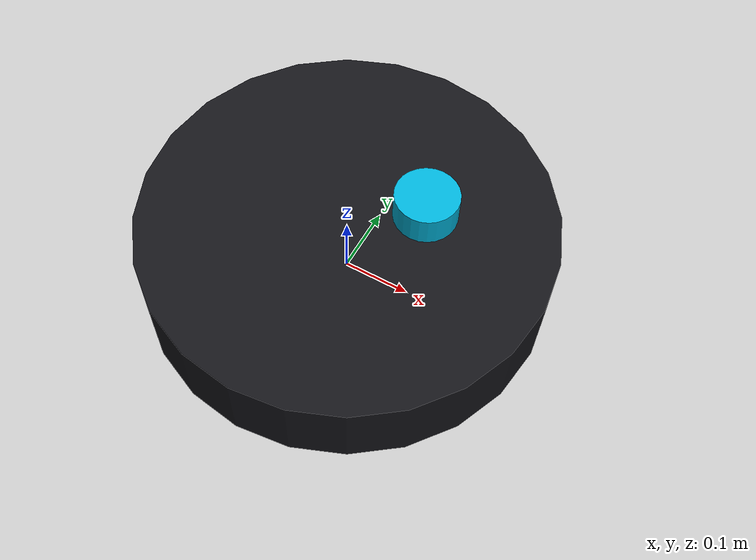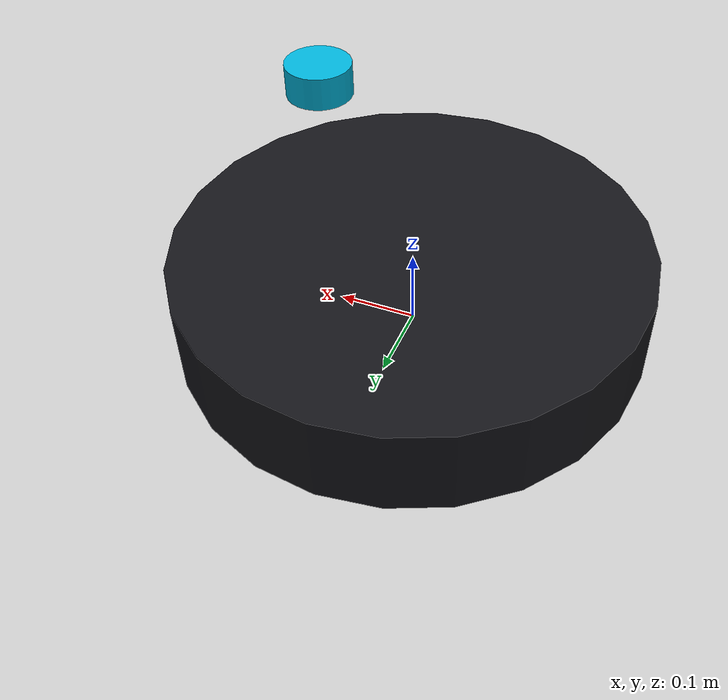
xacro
<?xml version="1.0"?>
<robot name="cryvex_real" xmlns:xacro="http://www.ros.org/wiki/xacro">

  <xacro:property name="footprint_radius" value="0.30"/>  <!-- 2026-10-05: tekerden tekere 59 cm olculdu (R 0.295), 0.30 korundu -->
  <xacro:property name="base_height" value="0.12"/>
  <xacro:property name="lidar_height" value="0.30"/>  <!-- 2026-10-23: kullanici olctu - yerden 30 cm, govdenin TAM merkezinde -->
  <xacro:property name="lidar_x" value="0.135"/>
  <xacro:property name="lidar_y" value="-0.045"/>
  <xacro:property name="lidar_yaw" value="${radians(-90)}"/>

  <material name="cryvex_dark">
    <color rgba="0.08 0.08 0.10 1.0"/>
  </material>
  <material name="cryvex_cyan">
    <color rgba="0.0 0.7 0.85 1.0"/>
  </material>

  <!-- REP-120: base_footprint zeminin izdüşümü, gercek gövde base_link -->
  <link name="base_footprint"/>

  <link name="base_link">
    <visual>
      <origin xyz="0 0 ${base_height/2}" rpy="0 0 0"/>
      <geometry>
        <cylinder radius="${footprint_radius}" length="${base_height}"/>
      </geometry>
      <material name="cryvex_dark"/>
    </visual>
    <collision>
      <origin xyz="0 0 ${base_height/2}" rpy="0 0 0"/>
      <geometry>
        <cylinder radius="${footprint_radius}" length="${base_height}"/>
      </geometry>
    </collision>
  </link>

  <joint name="base_footprint_to_base_link" type="fixed">
    <parent link="base_footprint"/>
    <child link="base_link"/>
    <origin xyz="0 0 0" rpy="0 0 0"/>
  </joint>

  <!-- YDLIDAR T-mini Plus - config/ydlidar_tmini_plus.yaml frame_id ile AYNI isim -->
  <link name="lidar_link">
    <visual>
      <geometry>
        <cylinder radius="0.04" length="0.04"/>
      </geometry>
      <material name="cryvex_cyan"/>
    </visual>
  </link>

  <joint name="base_link_to_lidar" type="fixed">
    <parent link="base_link"/>
    <child link="lidar_link"/>
    <origin xyz="${lidar_x} ${lidar_y} ${lidar_height}" rpy="0 0 ${lidar_yaw}"/>
  </joint>

  <xacro:property name="sekizgen_a" value="0.30"/>   <!-- 2026-10-23 olculdu: merkezden kenar ortasina 30 cm (kenar 23 cm) -->
  <!-- Sekizgenin merkezi = LiDAR (yukarida); sensorler bu merkeze gore yerlesir. -->
  <xacro:property name="govde_x" value="${lidar_x}"/>
  <xacro:property name="govde_y" value="${lidar_y}"/>
  <xacro:property name="sonar_z" value="0.12"/>      <!-- zeminden yukseklik (m) -->

  <xacro:macro name="sonar" params="name aci r">
    <link name="sonar_${name}_link"/>
    <joint name="base_link_to_sonar_${name}" type="fixed">
      <parent link="base_link"/>
      <child link="sonar_${name}_link"/>
      <origin xyz="${govde_x + r*cos(radians(aci))} ${govde_y + r*sin(radians(aci))} ${sonar_z}" rpy="0 0 ${radians(aci)}"/>
    </joint>
  </xacro:macro>

  <xacro:sonar name="fc" aci="0"    r="${sekizgen_a}"/>
  <xacro:sonar name="fl" aci="60"   r="${sekizgen_a/cos(radians(15))}"/>
  <xacro:sonar name="rl" aci="120"  r="${sekizgen_a/cos(radians(15))}"/>
  <xacro:sonar name="rc" aci="180"  r="${sekizgen_a}"/>
  <xacro:sonar name="rr" aci="-120" r="${sekizgen_a/cos(radians(15))}"/>
  <xacro:sonar name="fr" aci="-60"  r="${sekizgen_a/cos(radians(15))}"/>

  <!-- MPU6050 - stm32_bridge.py sadece Z ekseni acisal hizini yayinliyor,
       konum onemsiz; kart DUZ (Z yukari) monte edilmezse buraya rpy eklenmeli. -->
  <link name="imu_link"/>

  <joint name="base_link_to_imu" type="fixed">
    <parent link="base_link"/>
    <child link="imu_link"/>
    <origin xyz="0 0 ${base_height/2}" rpy="0 0 0"/>
  </joint>

</robot>
